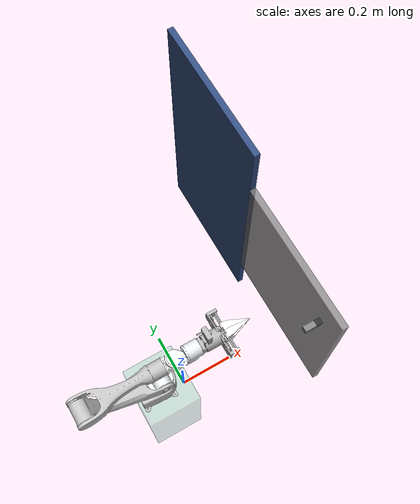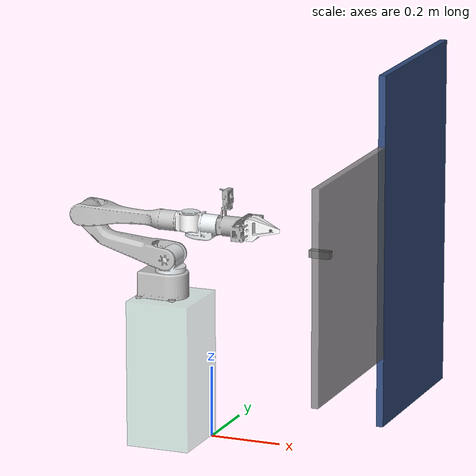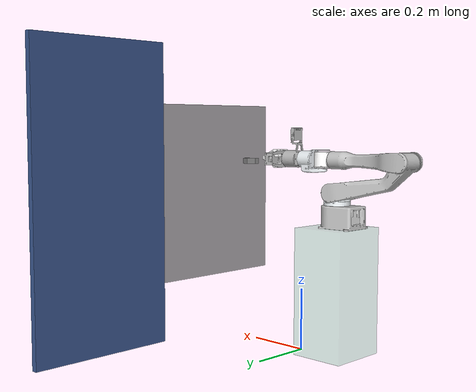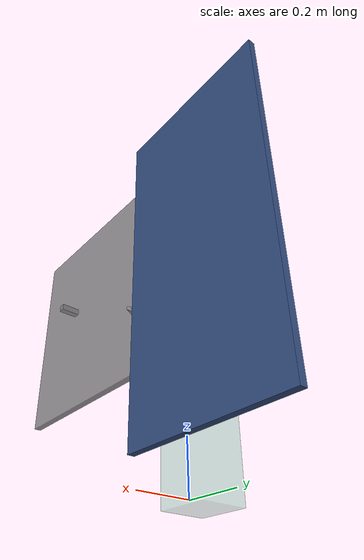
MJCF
<mujoco model="airbot_play_v3_0_gripper_otd">
    <compiler angle="radian" meshdir="/home/hjx/hjx_file/mujoco_file/Manipulator-Mujoco/Manipulator-Mujoco_airbot/manipulator_mujoco/assets/robots/airbot/meshes/" autolimits="true" />
    <size njmax="500" nconmax="100" />

    <option integrator="implicitfast"/>

    <!-- scene -->

    <default>
        <!-- damping -->
        <default class="AirBot">
            <joint damping='2'/>
        </default>

        <default class="Door">
            <joint damping='0.01'/>
        </default>

        <default class="Gripper">
            <joint damping='0.5'/>
        </default>

        <!-- visual -->
        <default class="visual">
            <geom group="2" type="mesh" contype="0" conaffinity="0" density="0"/>
        </default>

        <!-- collision -->
        <default class="collision">
          <geom group="3" type="mesh" density="2700"/>
        </default>
    </default>

    <asset>
        <material name="Opaque(63,63,63)" specular="0.5" shininess="0.5" rgba="0.250980 0.250980 0.250980 1.0"/>
        <material name="Opaque(229,234,237)" specular="0.5" shininess="0.5" rgba="0.898039 0.917647 0.929412 1.0"/>
        <material name="Opaque(232,133,0)" specular="0.5" shininess="0.5" rgba="0.909804 0.521569 0.000000 1.0"/>
        <material name="Opaque(202,209,238)" specular="0.5" shininess="0.5" rgba="0.792157 0.819608 0.933333 1.0"/>
        <material name="Opaque(255,255,255)" specular="0.5" shininess="0.5" rgba="1.000000 1.000000 1.000000 1.0"/>

        <mesh name="arm_base" file="arm_base.STL" />
        <mesh name="link1" file="link1.STL" />
        <mesh name="link2" file="link2.STL" />
        <mesh name="link3" file="link3.STL" />
        <mesh name="link4" file="link4.STL" />
        <mesh name="link5" file="link5.STL" />
        <mesh name="link6" file="link6.STL" />
        <mesh name="left" file="left.STL" />
        <mesh name="right" file="right.STL" />
    </asset>

    <worldbody>
        <!-- Light -->

        <!-- wall -->
        <body name="wall" pos="0.4 0.5 0.5">
            <geom type="box" size="0.01 0.25 0.5" rgba="0.2 0.3 0.5 0.9"/>
        </body>

        <!-- Door -->
        <body name="door" pos="0.4 0 0.5">
            <inertial pos="0 0 0" mass="0.5" diaginertia="0.001 0.001 0.001" />
            <joint name="joint_door" class="Door" type="hinge" pos="0.0 0.25 0.0" axis="0 0 1" limited="true" range="0 1.57" />
            <geom type="box" size="0.01 0.25 0.3" rgba="0.5 0.5 0.5 0.8"/>

            <body name="door_handle" pos="-0.02 -0.16 0.1">
                <geom type="box" size="0.03 0.01 0.01" rgba="0.5 0.5 0.5 1"/>
                <inertial mass="0.001" pos="0 0 0" diaginertia="0.001 0.001 0.001"/>
            </body>
        </body>

        <!-- AirBot_arm and box_link -->
        <body name="box_link" pos="-0.1 -0.05 0.2">
            <geom type="box" size="0.09 0.1 0.205" rgba="0.3 0.7 0.5 0.3"/>
            <inertial pos="0 0 0" mass="1000" diaginertia="0.00 0.00 0.00" />

            <body name="arm_base" pos="0 0 0.2">
                <geom type="mesh" rgba="0.75294 0.75294 0.75294 1" mesh="arm_base" />

                <body name="link1" pos="0 0 0.117">
                    <inertial pos="7.9126e-05 -0.002527 -0.0041359" quat="0.696716 0.716558 0.0238919 -0.0236876" mass="0.54639" diaginertia="0.000346294 0.000325437 0.000286269" />
                    <joint name="joint1" class="AirBot" pos="0 0 0" axis="0 0 1" limited="true" range="-3.14 2.09" />
                    <geom type="mesh" rgba="0.89804 0.91765 0.92941 1" mesh="link1" />

                    <body name="link2" pos="0 0 0" quat="0.135866 0.135867 -0.69393 0.693932">
                        <inertial pos="0.22493 0.0047721 0.008023" quat="-0.210875 0.632473 -0.273056 0.693506" mass="0.64621" diaginertia="0.00516535 0.00505042 0.000418626" />
                        <joint name="joint2" class="AirBot" pos="0 0 0" axis="0 0 1" limited="true" range="-2.96 0.17" />
                        <geom type="mesh" rgba="0.75294 0.75294 0.75294 1" mesh="link2" />

                        <body name="link3" pos="0.27009 0 0" quat="0.192144 0 0 -0.981367">
                            <inertial pos="0.16813 -5.5576e-05 0.0031184" quat="0.511278 0.488423 0.489191 0.510617" mass="0.26829" diaginertia="0.0031527 0.0030951 0.000239403" />
                            <joint name="joint3" class="AirBot" pos="0 0 0" axis="0 0 1" limited="true" range="-0.087 3.14" />
                            <geom type="mesh" rgba="0.75294 0.75294 0.75294 1" mesh="link3" />

                            <body name="link4" pos="0.30854 0 0" quat="-2.59734e-06 0.707105 2.59735e-06 0.707108">
                                <inertial pos="5.2436e-06 0.00040412 -0.03228" quat="0.999969 -0.000174762 -0.00792041 -6.98144e-05" mass="0.34876" diaginertia="0.000423574 0.000412 0.000126826" />
                                <joint name="joint4" class="AirBot" pos="0 0 0" axis="0 0 1" limited="true" range="-2.96 2.96" />
                                <geom type="mesh" rgba="1 1 1 1" mesh="link4" />

                                <body name="link5" pos="0 0 0" quat="0.707105 0.707108 0 0">
                                    <inertial pos="8.3328e-06 0.026148 0.002525" quat="0.531568 0.4663 0.4663 0.531568" mass="0.36132" diaginertia="0.0004677 0.000432922 0.000178178" />
                                    <joint name="joint5" class="AirBot" pos="0 0 0" axis="0 0 1" limited="true" range="-1.74 1.74" />
                                    <geom type="mesh" rgba="0.89804 0.91765 0.92941 1" mesh="link5" />

                                    <body name="link6" pos="0 0.23645 0" quat="0.499998 -0.5 0.5 0.500002">
                                        <inertial pos="-0.0047053 7.3857e-05 -0.12293" mass="0.53855" diaginertia="5e-05 5e-05 3.85e-05" />
                                        <joint name="joint6" class="Gripper" pos="0 0 0" axis="0 0 1" limited="true" range="-3.14 3.14" />
                                        <geom type="mesh" rgba="0.69804 0.69804 0.69804 1" mesh="link6" />
                                        <site name="attachment_site" pos="0.0 0.0 0.0" quat="1 0 0 0"/>
                                        <site name="eef_site" pos="0 0 0.0" quat="0 0.7071068 -0.7071068 0"/>

                                        <body name="left" pos="0 0.004 0" quat="0.707105 0 -0.707108 0">
                                            <inertial pos="-0.049039 -0.0096764 0.00038868" quat="0.650491 0.0296695 0.0398251 0.757889" mass="0.061803" diaginertia="2.74809e-05 1.88104e-05 1.19127e-05" />
                                            <joint name="endleft" class="Gripper" pos="0 0 0" axis="0 1 0" type="slide" limited="true" range="0.0 0.04" />
                                            <geom type="mesh" rgba="1 1 1 1" mesh="left" />
                                        </body>

                                        <body name="right" pos="0 -0.004 0" quat="0.707105 0 -0.707108 0">
                                            <inertial pos="-0.048742 0.0096369 0.00044322" quat="0.757393 0.0415116 0.0313705 0.650883" mass="0.0626" diaginertia="2.79281e-05 1.90181e-05 1.21737e-05" />
                                            <joint name="endright" class="Gripper" pos="0 0 0" axis="0 1 0" type="slide" limited="true" range="-0.04 -0.0" />
                                            <geom type="mesh" rgba="1 1 1 1" mesh="right" />
                                        </body>

                                    </body>
                                </body>
                            </body>
                        </body>
                    </body>
                </body>
            </body>
        </body>
    </worldbody>

    <!--Contacts-->
    <contact>
        <exclude body1="wall" body2="door"/>
        <exclude body1="door" body2="door_handle"/>
        <exclude body1="box_link" body2="arm_base"/>
        <exclude body1="arm_base" body2="link1"/>
    </contact>

</mujoco>
